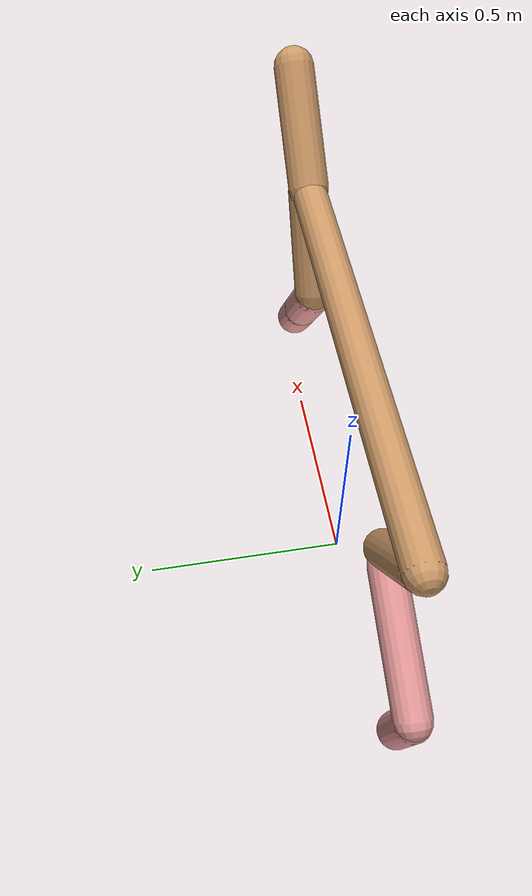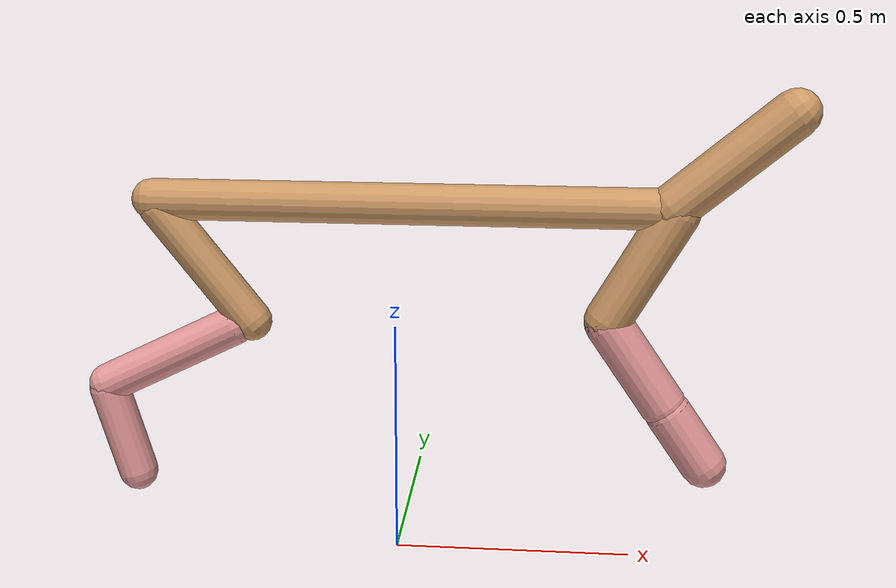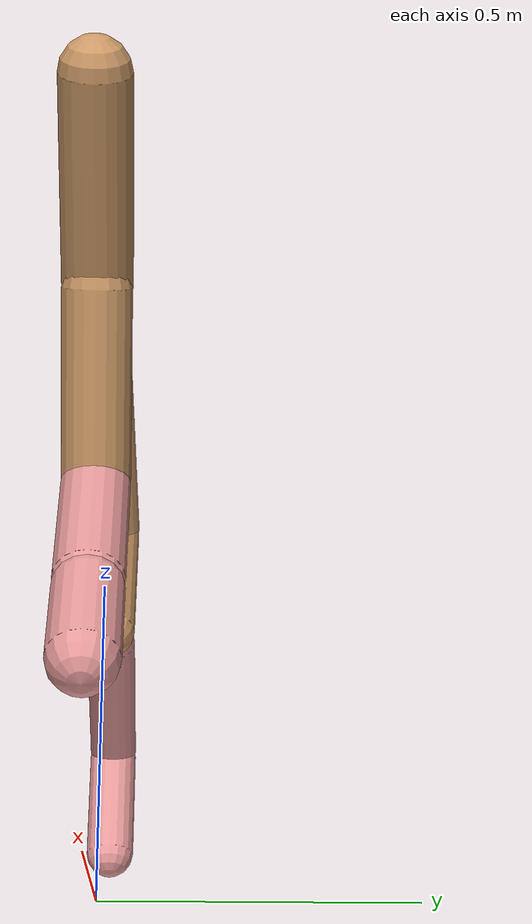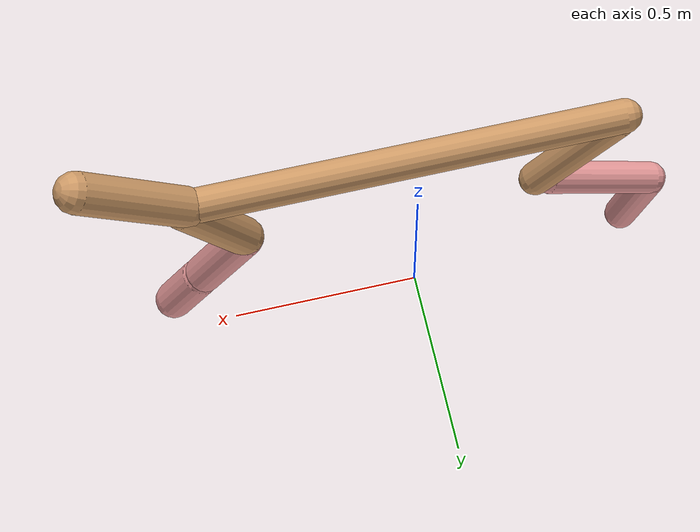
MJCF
<mujoco model="cheetah">
  <compiler angle="radian" coordinate="local" inertiafromgeom="true" settotalmass="14" />
  <default>
    <joint armature=".1" damping=".01" limited="true" solimplimit="0 .8 .03" solreflimit=".02 1" stiffness="8" />
    <geom conaffinity="0" condim="3" contype="1" friction="0.8 .1 .1" rgba="0.8 0.6 .4 1" solimp="0.0 0.8 0.01" solref="0.02 1" />
    <motor ctrllimited="true" ctrlrange="-1 1" />
  </default>
  <size nstack="300000" nuser_geom="1" />
  <option gravity="0 0 -9.81" timestep="0.01" />
  <worldbody>
    <body name="torso" pos="0.0 0.0 0.762737221228814">
      <joint armature="0" axis="1 0 0" damping="0" limited="false" name="ignorex" pos="0 0 0" stiffness="0" type="slide" />
      <joint armature="0" axis="0 0 1" damping="0" limited="false" name="ignorez" pos="0 0 0" stiffness="0" type="slide" />
      <joint armature="0" axis="0 1 0" damping="0" limited="false" name="ignorey" pos="0 0 0" stiffness="0" type="hinge" />
      <geom fromto="-0.5 0.0 0.0 0.5737834124400575 0.0 0.0" name="torso" size="0.04232895087771374" type="capsule" />
      <geom axisangle="0 1 0 .87" name="head" pos="0.6737834124400573 0.0 0.1" size="0.04957779423763428 0.15" type="capsule" />

      <body name="bthigh" pos="-.5 0 0">
        <joint axis="0 1 0" damping="6" name="bthigh" pos="0 0 0" range="-.52 1.05" stiffness="240" type="hinge" />
        <geom axisangle="0 1 0 -3.8" name="bthigh" pos="0.10470040342280278 0.0 -0.1361105244496436" size="0.04209841936506006 0.1527092348120153" type="capsule" />
        <body name="bshin" pos="0.16940080684560554 0.0 -0.2622210488992872">
          <joint axis="0 1 0" damping="4.5" name="bshin" pos="0 0 0" range="-.785 .785" stiffness="180" type="hinge" />
          <geom axisangle="0 1 0 -2.03" name="bshin" pos="-0.14713311990103753 0.0 -0.07356655995051876" rgba="0.9 0.6 0.6 1" size="0.04209841936506006 0.15797507049518825" type="capsule" />
          <body name="bfoot" pos="-0.29426623980207506 0.0 -0.14713311990103753">
            <joint axis="0 1 0" damping="3" name="bfoot" pos="0 0 0" range="-.4 .785" stiffness="120" type="hinge" />
            <geom axisangle="0 1 0 -.27" name="bfoot" pos="0.03147667223821826 0.0 -0.10177457357023904" rgba="0.9 0.6 0.6 1" size="0.04209841936506006 0.0989977108436513" type="capsule" />
            <inertial mass="10" />
          </body>
        </body>
      </body>
      <body name="fthigh" pos="0.5737834124400574 0.0 0.0">
        <joint axis="0 1 0" damping="4.5" name="fthigh" pos="0 0 0" range="-1.5 0.8" stiffness="180" type="hinge" />
        <geom axisangle="0 1 0 .52" name="fthigh" pos="-0.06987782101930874 0.0 -0.11979055031881497" size="0.04882290635422976 0.1327575193362941" type="capsule" />
        <body name="fshin" pos="-0.13975564203861748 0.0 -0.23958110063762994">
          <joint axis="0 1 0" damping="3" name="fshin" pos="0 0 0" range="-1.2 1.1" stiffness="120" type="hinge" />
          <geom axisangle="0 1 0 -.6" name="fshin" pos="0.06488685086738713 0.0 -0.08984333197022834" rgba="0.9 0.6 0.6 1" size="0.04882290635422976 0.10580674473418926" type="capsule" />
          <body name="ffoot" pos="0.12977370173477426 0.0 -0.17968666394045668">
            <joint axis="0 1 0" damping="1.5" name="ffoot" pos="0 0 0" range="-3.1 -0.3" stiffness="60" type="hinge" />
            <geom axisangle="0 1 0 -.6" name="ffoot" pos="0.0449309877580812 0.0 -0.06989264762368187" rgba="0.9 0.6 0.6 1" size="0.04882290635422976 0.06987237859804953" type="capsule" />
            <inertial mass="10" />
          </body>
        </body>
      </body>
    </body>
  </worldbody>
  <actuator>
    <motor gear="120" joint="bthigh" name="bthigh" />
    <motor gear="90" joint="bshin" name="bshin" />
    <motor gear="60" joint="bfoot" name="bfoot" />
    <motor gear="120" joint="fthigh" name="fthigh" />
    <motor gear="60" joint="fshin" name="fshin" />
    <motor gear="30" joint="ffoot" name="ffoot" />
  </actuator>
</mujoco>
